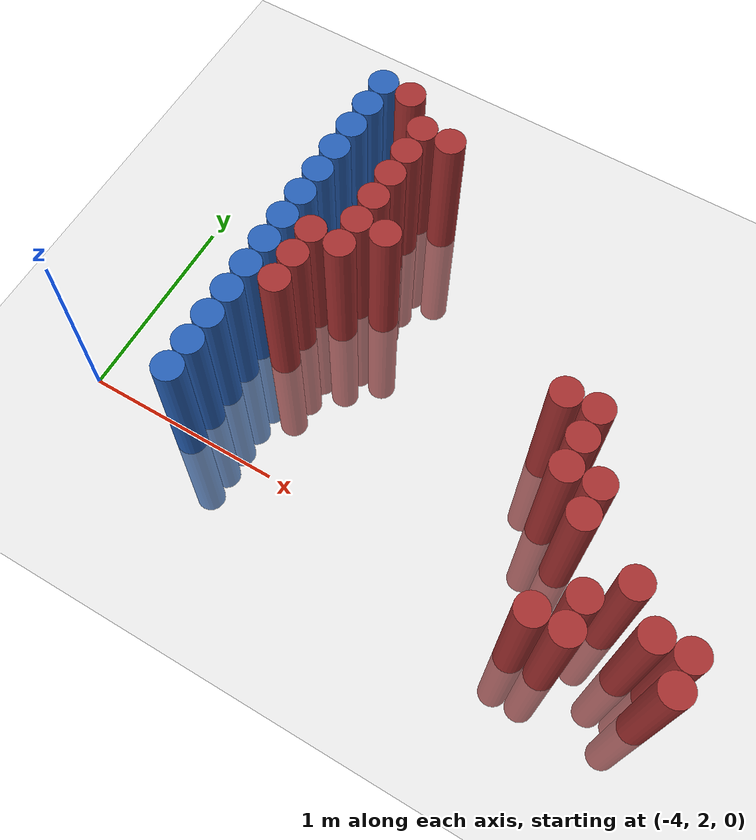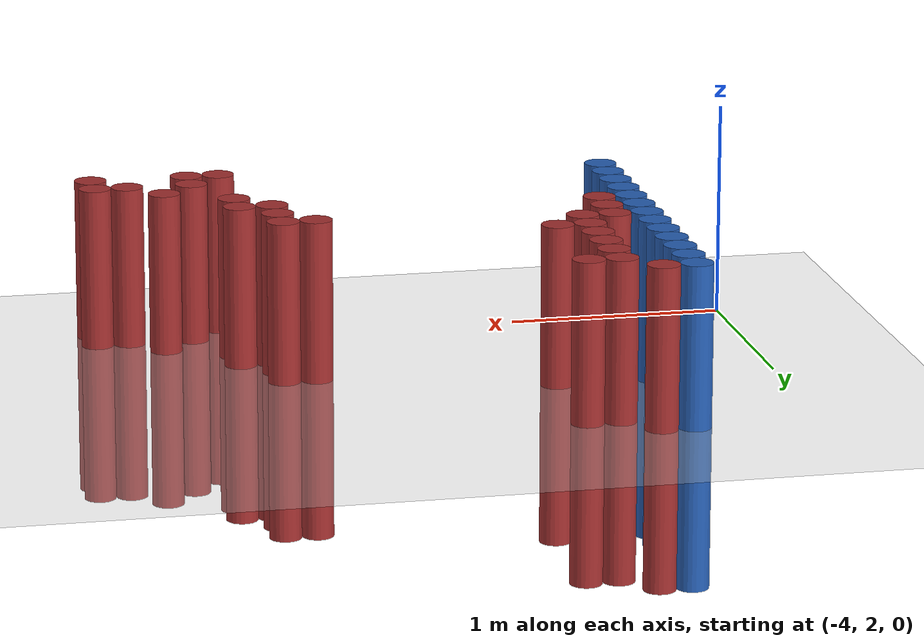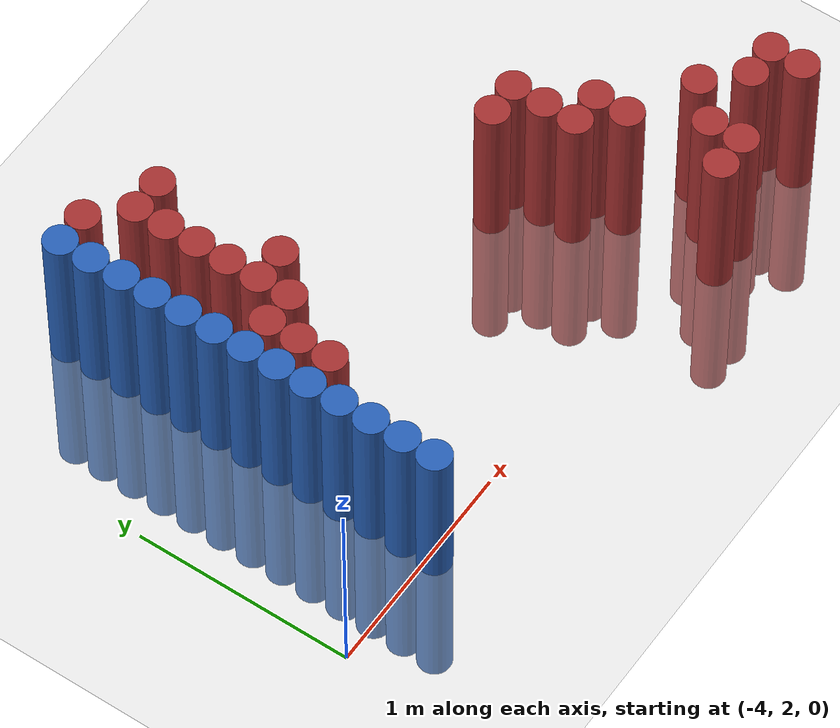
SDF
<sdf version="1.6">
 <world name="default">
  <model name="ground_plane">
   <static>1</static>
   <link name="link">
    <collision name="collision">
     <geometry><plane><normal>0 0 1</normal><size>100 100</size></plane></geometry>
     <surface><friction><ode><mu>100</mu><mu2>50</mu2></ode></friction></surface>
    </collision>
    <visual name="visual">
     <cast_shadows>0</cast_shadows>
     <geometry><plane><normal>0 0 1</normal><size>100 100</size></plane></geometry>
     <material>
      <script><uri>file://media/materials/scripts/gazebo.material</uri><name>Gazebo/Grey</name></script>
     </material>
    </visual>
   </link>
  </model>
  <model name="unit_cylinder_141">
   <static>1</static>
   <pose>-3.425000 1.975000 0.000000 0.000000 0.000000 0.000000</pose>
   <link name="link">
    <inertial>
     <mass>1</mass>
     <inertia><ixx>0.145833</ixx><ixy>0</ixy><ixz>0</ixz><iyy>0.145833</iyy><iyz>0</iyz><izz>0.125</izz></inertia>
    </inertial>
    <collision name="collision">
     <geometry><cylinder><radius>0.075000</radius><length>1.5</length></cylinder></geometry>
    </collision>
    <visual name="visual">
     <geometry><cylinder><radius>0.075000</radius><length>1.5</length></cylinder></geometry>
     <material>
      <ambient>0.152000 0.379000 0.720000 1</ambient>
      <diffuse>0.152000 0.379000 0.720000 1</diffuse>
     </material>
     <material>
      <script><name>Gazebo/Grey</name><uri>file://media/materials/scripts/gazebo.material</uri></script>
     </material>
    </visual>
   </link>
  </model>
  <model name="unit_cylinder_143">
   <static>1</static>
   <pose>-3.425000 2.125000 0.000000 0.000000 0.000000 0.000000</pose>
   <link name="link">
    <inertial>
     <mass>1</mass>
     <inertia><ixx>0.145833</ixx><ixy>0</ixy><ixz>0</ixz><iyy>0.145833</iyy><iyz>0</iyz><izz>0.125</izz></inertia>
    </inertial>
    <collision name="collision">
     <geometry><cylinder><radius>0.075000</radius><length>1.5</length></cylinder></geometry>
    </collision>
    <visual name="visual">
     <geometry><cylinder><radius>0.075000</radius><length>1.5</length></cylinder></geometry>
     <material>
      <ambient>0.152000 0.379000 0.720000 1</ambient>
      <diffuse>0.152000 0.379000 0.720000 1</diffuse>
     </material>
     <material>
      <script><name>Gazebo/Grey</name><uri>file://media/materials/scripts/gazebo.material</uri></script>
     </material>
    </visual>
   </link>
  </model>
  <model name="unit_cylinder_145">
   <static>1</static>
   <pose>-3.425000 2.275000 0.000000 0.000000 0.000000 0.000000</pose>
   <link name="link">
    <inertial>
     <mass>1</mass>
     <inertia><ixx>0.145833</ixx><ixy>0</ixy><ixz>0</ixz><iyy>0.145833</iyy><iyz>0</iyz><izz>0.125</izz></inertia>
    </inertial>
    <collision name="collision">
     <geometry><cylinder><radius>0.075000</radius><length>1.5</length></cylinder></geometry>
    </collision>
    <visual name="visual">
     <geometry><cylinder><radius>0.075000</radius><length>1.5</length></cylinder></geometry>
     <material>
      <ambient>0.152000 0.379000 0.720000 1</ambient>
      <diffuse>0.152000 0.379000 0.720000 1</diffuse>
     </material>
     <material>
      <script><name>Gazebo/Grey</name><uri>file://media/materials/scripts/gazebo.material</uri></script>
     </material>
    </visual>
   </link>
  </model>
  <model name="unit_cylinder_147">
   <static>1</static>
   <pose>-3.425000 2.425000 0.000000 0.000000 0.000000 0.000000</pose>
   <link name="link">
    <inertial>
     <mass>1</mass>
     <inertia><ixx>0.145833</ixx><ixy>0</ixy><ixz>0</ixz><iyy>0.145833</iyy><iyz>0</iyz><izz>0.125</izz></inertia>
    </inertial>
    <collision name="collision">
     <geometry><cylinder><radius>0.075000</radius><length>1.5</length></cylinder></geometry>
    </collision>
    <visual name="visual">
     <geometry><cylinder><radius>0.075000</radius><length>1.5</length></cylinder></geometry>
     <material>
      <ambient>0.152000 0.379000 0.720000 1</ambient>
      <diffuse>0.152000 0.379000 0.720000 1</diffuse>
     </material>
     <material>
      <script><name>Gazebo/Grey</name><uri>file://media/materials/scripts/gazebo.material</uri></script>
     </material>
    </visual>
   </link>
  </model>
  <model name="unit_cylinder_149">
   <static>1</static>
   <pose>-3.425000 2.575000 0.000000 0.000000 0.000000 0.000000</pose>
   <link name="link">
    <inertial>
     <mass>1</mass>
     <inertia><ixx>0.145833</ixx><ixy>0</ixy><ixz>0</ixz><iyy>0.145833</iyy><iyz>0</iyz><izz>0.125</izz></inertia>
    </inertial>
    <collision name="collision">
     <geometry><cylinder><radius>0.075000</radius><length>1.5</length></cylinder></geometry>
    </collision>
    <visual name="visual">
     <geometry><cylinder><radius>0.075000</radius><length>1.5</length></cylinder></geometry>
     <material>
      <ambient>0.152000 0.379000 0.720000 1</ambient>
      <diffuse>0.152000 0.379000 0.720000 1</diffuse>
     </material>
     <material>
      <script><name>Gazebo/Grey</name><uri>file://media/materials/scripts/gazebo.material</uri></script>
     </material>
    </visual>
   </link>
  </model>
  <model name="unit_cylinder_151">
   <static>1</static>
   <pose>-3.425000 2.725000 0.000000 0.000000 0.000000 0.000000</pose>
   <link name="link">
    <inertial>
     <mass>1</mass>
     <inertia><ixx>0.145833</ixx><ixy>0</ixy><ixz>0</ixz><iyy>0.145833</iyy><iyz>0</iyz><izz>0.125</izz></inertia>
    </inertial>
    <collision name="collision">
     <geometry><cylinder><radius>0.075000</radius><length>1.5</length></cylinder></geometry>
    </collision>
    <visual name="visual">
     <geometry><cylinder><radius>0.075000</radius><length>1.5</length></cylinder></geometry>
     <material>
      <ambient>0.152000 0.379000 0.720000 1</ambient>
      <diffuse>0.152000 0.379000 0.720000 1</diffuse>
     </material>
     <material>
      <script><name>Gazebo/Grey</name><uri>file://media/materials/scripts/gazebo.material</uri></script>
     </material>
    </visual>
   </link>
  </model>
  <model name="unit_cylinder_153">
   <static>1</static>
   <pose>-3.425000 2.875000 0.000000 0.000000 0.000000 0.000000</pose>
   <link name="link">
    <inertial>
     <mass>1</mass>
     <inertia><ixx>0.145833</ixx><ixy>0</ixy><ixz>0</ixz><iyy>0.145833</iyy><iyz>0</iyz><izz>0.125</izz></inertia>
    </inertial>
    <collision name="collision">
     <geometry><cylinder><radius>0.075000</radius><length>1.5</length></cylinder></geometry>
    </collision>
    <visual name="visual">
     <geometry><cylinder><radius>0.075000</radius><length>1.5</length></cylinder></geometry>
     <material>
      <ambient>0.152000 0.379000 0.720000 1</ambient>
      <diffuse>0.152000 0.379000 0.720000 1</diffuse>
     </material>
     <material>
      <script><name>Gazebo/Grey</name><uri>file://media/materials/scripts/gazebo.material</uri></script>
     </material>
    </visual>
   </link>
  </model>
  <model name="unit_cylinder_155">
   <static>1</static>
   <pose>-3.425000 3.025000 0.000000 0.000000 0.000000 0.000000</pose>
   <link name="link">
    <inertial>
     <mass>1</mass>
     <inertia><ixx>0.145833</ixx><ixy>0</ixy><ixz>0</ixz><iyy>0.145833</iyy><iyz>0</iyz><izz>0.125</izz></inertia>
    </inertial>
    <collision name="collision">
     <geometry><cylinder><radius>0.075000</radius><length>1.5</length></cylinder></geometry>
    </collision>
    <visual name="visual">
     <geometry><cylinder><radius>0.075000</radius><length>1.5</length></cylinder></geometry>
     <material>
      <ambient>0.152000 0.379000 0.720000 1</ambient>
      <diffuse>0.152000 0.379000 0.720000 1</diffuse>
     </material>
     <material>
      <script><name>Gazebo/Grey</name><uri>file://media/materials/scripts/gazebo.material</uri></script>
     </material>
    </visual>
   </link>
  </model>
  <model name="unit_cylinder_157">
   <static>1</static>
   <pose>-3.425000 3.175000 0.000000 0.000000 0.000000 0.000000</pose>
   <link name="link">
    <inertial>
     <mass>1</mass>
     <inertia><ixx>0.145833</ixx><ixy>0</ixy><ixz>0</ixz><iyy>0.145833</iyy><iyz>0</iyz><izz>0.125</izz></inertia>
    </inertial>
    <collision name="collision">
     <geometry><cylinder><radius>0.075000</radius><length>1.5</length></cylinder></geometry>
    </collision>
    <visual name="visual">
     <geometry><cylinder><radius>0.075000</radius><length>1.5</length></cylinder></geometry>
     <material>
      <ambient>0.152000 0.379000 0.720000 1</ambient>
      <diffuse>0.152000 0.379000 0.720000 1</diffuse>
     </material>
     <material>
      <script><name>Gazebo/Grey</name><uri>file://media/materials/scripts/gazebo.material</uri></script>
     </material>
    </visual>
   </link>
  </model>
  <model name="unit_cylinder_159">
   <static>1</static>
   <pose>-3.425000 3.325000 0.000000 0.000000 0.000000 0.000000</pose>
   <link name="link">
    <inertial>
     <mass>1</mass>
     <inertia><ixx>0.145833</ixx><ixy>0</ixy><ixz>0</ixz><iyy>0.145833</iyy><iyz>0</iyz><izz>0.125</izz></inertia>
    </inertial>
    <collision name="collision">
     <geometry><cylinder><radius>0.075000</radius><length>1.5</length></cylinder></geometry>
    </collision>
    <visual name="visual">
     <geometry><cylinder><radius>0.075000</radius><length>1.5</length></cylinder></geometry>
     <material>
      <ambient>0.152000 0.379000 0.720000 1</ambient>
      <diffuse>0.152000 0.379000 0.720000 1</diffuse>
     </material>
     <material>
      <script><name>Gazebo/Grey</name><uri>file://media/materials/scripts/gazebo.material</uri></script>
     </material>
    </visual>
   </link>
  </model>
  <model name="unit_cylinder_161">
   <static>1</static>
   <pose>-3.425000 3.475000 0.000000 0.000000 0.000000 0.000000</pose>
   <link name="link">
    <inertial>
     <mass>1</mass>
     <inertia><ixx>0.145833</ixx><ixy>0</ixy><ixz>0</ixz><iyy>0.145833</iyy><iyz>0</iyz><izz>0.125</izz></inertia>
    </inertial>
    <collision name="collision">
     <geometry><cylinder><radius>0.075000</radius><length>1.5</length></cylinder></geometry>
    </collision>
    <visual name="visual">
     <geometry><cylinder><radius>0.075000</radius><length>1.5</length></cylinder></geometry>
     <material>
      <ambient>0.152000 0.379000 0.720000 1</ambient>
      <diffuse>0.152000 0.379000 0.720000 1</diffuse>
     </material>
     <material>
      <script><name>Gazebo/Grey</name><uri>file://media/materials/scripts/gazebo.material</uri></script>
     </material>
    </visual>
   </link>
  </model>
  <model name="unit_cylinder_163">
   <static>1</static>
   <pose>-3.425000 3.625000 0.000000 0.000000 0.000000 0.000000</pose>
   <link name="link">
    <inertial>
     <mass>1</mass>
     <inertia><ixx>0.145833</ixx><ixy>0</ixy><ixz>0</ixz><iyy>0.145833</iyy><iyz>0</iyz><izz>0.125</izz></inertia>
    </inertial>
    <collision name="collision">
     <geometry><cylinder><radius>0.075000</radius><length>1.5</length></cylinder></geometry>
    </collision>
    <visual name="visual">
     <geometry><cylinder><radius>0.075000</radius><length>1.5</length></cylinder></geometry>
     <material>
      <ambient>0.152000 0.379000 0.720000 1</ambient>
      <diffuse>0.152000 0.379000 0.720000 1</diffuse>
     </material>
     <material>
      <script><name>Gazebo/Grey</name><uri>file://media/materials/scripts/gazebo.material</uri></script>
     </material>
    </visual>
   </link>
  </model>
  <model name="unit_cylinder_165">
   <static>1</static>
   <pose>-3.425000 3.775000 0.000000 0.000000 0.000000 0.000000</pose>
   <link name="link">
    <inertial>
     <mass>1</mass>
     <inertia><ixx>0.145833</ixx><ixy>0</ixy><ixz>0</ixz><iyy>0.145833</iyy><iyz>0</iyz><izz>0.125</izz></inertia>
    </inertial>
    <collision name="collision">
     <geometry><cylinder><radius>0.075000</radius><length>1.5</length></cylinder></geometry>
    </collision>
    <visual name="visual">
     <geometry><cylinder><radius>0.075000</radius><length>1.5</length></cylinder></geometry>
     <material>
      <ambient>0.152000 0.379000 0.720000 1</ambient>
      <diffuse>0.152000 0.379000 0.720000 1</diffuse>
     </material>
     <material>
      <script><name>Gazebo/Grey</name><uri>file://media/materials/scripts/gazebo.material</uri></script>
     </material>
    </visual>
   </link>
  </model>
  <model name="unit_cylinder_234">
   <static>1</static>
   <pose>-3.425000 1.975000 0.000000 0.000000 0.000000 0.000000</pose>
   <link name="link">
    <inertial>
     <mass>1</mass>
     <inertia><ixx>0.145833</ixx><ixy>0</ixy><ixz>0</ixz><iyy>0.145833</iyy><iyz>0</iyz><izz>0.125</izz></inertia>
    </inertial>
    <collision name="collision">
     <geometry><cylinder><radius>0.075000</radius><length>1.5</length></cylinder></geometry>
    </collision>
    <visual name="visual">
     <geometry><cylinder><radius>0.075000</radius><length>1.5</length></cylinder></geometry>
     <material>
      <ambient>0.152000 0.379000 0.720000 1</ambient>
      <diffuse>0.152000 0.379000 0.720000 1</diffuse>
     </material>
     <material>
      <script><name>Gazebo/Grey</name><uri>file://media/materials/scripts/gazebo.material</uri></script>
     </material>
    </visual>
   </link>
  </model>
  <model name="unit_cylinder_235">
   <static>1</static>
   <pose>-3.425000 2.125000 0.000000 0.000000 0.000000 0.000000</pose>
   <link name="link">
    <inertial>
     <mass>1</mass>
     <inertia><ixx>0.145833</ixx><ixy>0</ixy><ixz>0</ixz><iyy>0.145833</iyy><iyz>0</iyz><izz>0.125</izz></inertia>
    </inertial>
    <collision name="collision">
     <geometry><cylinder><radius>0.075000</radius><length>1.5</length></cylinder></geometry>
    </collision>
    <visual name="visual">
     <geometry><cylinder><radius>0.075000</radius><length>1.5</length></cylinder></geometry>
     <material>
      <ambient>0.152000 0.379000 0.720000 1</ambient>
      <diffuse>0.152000 0.379000 0.720000 1</diffuse>
     </material>
     <material>
      <script><name>Gazebo/Grey</name><uri>file://media/materials/scripts/gazebo.material</uri></script>
     </material>
    </visual>
   </link>
  </model>
  <model name="unit_cylinder_236">
   <static>1</static>
   <pose>-3.425000 2.275000 0.000000 0.000000 0.000000 0.000000</pose>
   <link name="link">
    <inertial>
     <mass>1</mass>
     <inertia><ixx>0.145833</ixx><ixy>0</ixy><ixz>0</ixz><iyy>0.145833</iyy><iyz>0</iyz><izz>0.125</izz></inertia>
    </inertial>
    <collision name="collision">
     <geometry><cylinder><radius>0.075000</radius><length>1.5</length></cylinder></geometry>
    </collision>
    <visual name="visual">
     <geometry><cylinder><radius>0.075000</radius><length>1.5</length></cylinder></geometry>
     <material>
      <ambient>0.152000 0.379000 0.720000 1</ambient>
      <diffuse>0.152000 0.379000 0.720000 1</diffuse>
     </material>
     <material>
      <script><name>Gazebo/Grey</name><uri>file://media/materials/scripts/gazebo.material</uri></script>
     </material>
    </visual>
   </link>
  </model>
  <model name="unit_cylinder_237">
   <static>1</static>
   <pose>-3.425000 2.425000 0.000000 0.000000 0.000000 0.000000</pose>
   <link name="link">
    <inertial>
     <mass>1</mass>
     <inertia><ixx>0.145833</ixx><ixy>0</ixy><ixz>0</ixz><iyy>0.145833</iyy><iyz>0</iyz><izz>0.125</izz></inertia>
    </inertial>
    <collision name="collision">
     <geometry><cylinder><radius>0.075000</radius><length>1.5</length></cylinder></geometry>
    </collision>
    <visual name="visual">
     <geometry><cylinder><radius>0.075000</radius><length>1.5</length></cylinder></geometry>
     <material>
      <ambient>0.152000 0.379000 0.720000 1</ambient>
      <diffuse>0.152000 0.379000 0.720000 1</diffuse>
     </material>
     <material>
      <script><name>Gazebo/Grey</name><uri>file://media/materials/scripts/gazebo.material</uri></script>
     </material>
    </visual>
   </link>
  </model>
  <model name="unit_cylinder_238">
   <static>1</static>
   <pose>-3.425000 2.575000 0.000000 0.000000 0.000000 0.000000</pose>
   <link name="link">
    <inertial>
     <mass>1</mass>
     <inertia><ixx>0.145833</ixx><ixy>0</ixy><ixz>0</ixz><iyy>0.145833</iyy><iyz>0</iyz><izz>0.125</izz></inertia>
    </inertial>
    <collision name="collision">
     <geometry><cylinder><radius>0.075000</radius><length>1.5</length></cylinder></geometry>
    </collision>
    <visual name="visual">
     <geometry><cylinder><radius>0.075000</radius><length>1.5</length></cylinder></geometry>
     <material>
      <ambient>0.152000 0.379000 0.720000 1</ambient>
      <diffuse>0.152000 0.379000 0.720000 1</diffuse>
     </material>
     <material>
      <script><name>Gazebo/Grey</name><uri>file://media/materials/scripts/gazebo.material</uri></script>
     </material>
    </visual>
   </link>
  </model>
  <model name="unit_cylinder_239">
   <static>1</static>
   <pose>-3.425000 2.725000 0.000000 0.000000 0.000000 0.000000</pose>
   <link name="link">
    <inertial>
     <mass>1</mass>
     <inertia><ixx>0.145833</ixx><ixy>0</ixy><ixz>0</ixz><iyy>0.145833</iyy><iyz>0</iyz><izz>0.125</izz></inertia>
    </inertial>
    <collision name="collision">
     <geometry><cylinder><radius>0.075000</radius><length>1.5</length></cylinder></geometry>
    </collision>
    <visual name="visual">
     <geometry><cylinder><radius>0.075000</radius><length>1.5</length></cylinder></geometry>
     <material>
      <ambient>0.152000 0.379000 0.720000 1</ambient>
      <diffuse>0.152000 0.379000 0.720000 1</diffuse>
     </material>
     <material>
      <script><name>Gazebo/Grey</name><uri>file://media/materials/scripts/gazebo.material</uri></script>
     </material>
    </visual>
   </link>
  </model>
  <model name="unit_cylinder_240">
   <static>1</static>
   <pose>-3.425000 2.875000 0.000000 0.000000 0.000000 0.000000</pose>
   <link name="link">
    <inertial>
     <mass>1</mass>
     <inertia><ixx>0.145833</ixx><ixy>0</ixy><ixz>0</ixz><iyy>0.145833</iyy><iyz>0</iyz><izz>0.125</izz></inertia>
    </inertial>
    <collision name="collision">
     <geometry><cylinder><radius>0.075000</radius><length>1.5</length></cylinder></geometry>
    </collision>
    <visual name="visual">
     <geometry><cylinder><radius>0.075000</radius><length>1.5</length></cylinder></geometry>
     <material>
      <ambient>0.152000 0.379000 0.720000 1</ambient>
      <diffuse>0.152000 0.379000 0.720000 1</diffuse>
     </material>
     <material>
      <script><name>Gazebo/Grey</name><uri>file://media/materials/scripts/gazebo.material</uri></script>
     </material>
    </visual>
   </link>
  </model>
  <model name="unit_cylinder_241">
   <static>1</static>
   <pose>-3.425000 3.025000 0.000000 0.000000 0.000000 0.000000</pose>
   <link name="link">
    <inertial>
     <mass>1</mass>
     <inertia><ixx>0.145833</ixx><ixy>0</ixy><ixz>0</ixz><iyy>0.145833</iyy><iyz>0</iyz><izz>0.125</izz></inertia>
    </inertial>
    <collision name="collision">
     <geometry><cylinder><radius>0.075000</radius><length>1.5</length></cylinder></geometry>
    </collision>
    <visual name="visual">
     <geometry><cylinder><radius>0.075000</radius><length>1.5</length></cylinder></geometry>
     <material>
      <ambient>0.152000 0.379000 0.720000 1</ambient>
      <diffuse>0.152000 0.379000 0.720000 1</diffuse>
     </material>
     <material>
      <script><name>Gazebo/Grey</name><uri>file://media/materials/scripts/gazebo.material</uri></script>
     </material>
    </visual>
   </link>
  </model>
  <model name="unit_cylinder_242">
   <static>1</static>
   <pose>-3.425000 3.175000 0.000000 0.000000 0.000000 0.000000</pose>
   <link name="link">
    <inertial>
     <mass>1</mass>
     <inertia><ixx>0.145833</ixx><ixy>0</ixy><ixz>0</ixz><iyy>0.145833</iyy><iyz>0</iyz><izz>0.125</izz></inertia>
    </inertial>
    <collision name="collision">
     <geometry><cylinder><radius>0.075000</radius><length>1.5</length></cylinder></geometry>
    </collision>
    <visual name="visual">
     <geometry><cylinder><radius>0.075000</radius><length>1.5</length></cylinder></geometry>
     <material>
      <ambient>0.152000 0.379000 0.720000 1</ambient>
      <diffuse>0.152000 0.379000 0.720000 1</diffuse>
     </material>
     <material>
      <script><name>Gazebo/Grey</name><uri>file://media/materials/scripts/gazebo.material</uri></script>
     </material>
    </visual>
   </link>
  </model>
  <model name="unit_cylinder_243">
   <static>1</static>
   <pose>-3.425000 3.325000 0.000000 0.000000 0.000000 0.000000</pose>
   <link name="link">
    <inertial>
     <mass>1</mass>
     <inertia><ixx>0.145833</ixx><ixy>0</ixy><ixz>0</ixz><iyy>0.145833</iyy><iyz>0</iyz><izz>0.125</izz></inertia>
    </inertial>
    <collision name="collision">
     <geometry><cylinder><radius>0.075000</radius><length>1.5</length></cylinder></geometry>
    </collision>
    <visual name="visual">
     <geometry><cylinder><radius>0.075000</radius><length>1.5</length></cylinder></geometry>
     <material>
      <ambient>0.152000 0.379000 0.720000 1</ambient>
      <diffuse>0.152000 0.379000 0.720000 1</diffuse>
     </material>
     <material>
      <script><name>Gazebo/Grey</name><uri>file://media/materials/scripts/gazebo.material</uri></script>
     </material>
    </visual>
   </link>
  </model>
  <model name="unit_cylinder_244">
   <static>1</static>
   <pose>-3.425000 3.475000 0.000000 0.000000 0.000000 0.000000</pose>
   <link name="link">
    <inertial>
     <mass>1</mass>
     <inertia><ixx>0.145833</ixx><ixy>0</ixy><ixz>0</ixz><iyy>0.145833</iyy><iyz>0</iyz><izz>0.125</izz></inertia>
    </inertial>
    <collision name="collision">
     <geometry><cylinder><radius>0.075000</radius><length>1.5</length></cylinder></geometry>
    </collision>
    <visual name="visual">
     <geometry><cylinder><radius>0.075000</radius><length>1.5</length></cylinder></geometry>
     <material>
      <ambient>0.152000 0.379000 0.720000 1</ambient>
      <diffuse>0.152000 0.379000 0.720000 1</diffuse>
     </material>
     <material>
      <script><name>Gazebo/Grey</name><uri>file://media/materials/scripts/gazebo.material</uri></script>
     </material>
    </visual>
   </link>
  </model>
  <model name="unit_cylinder_245">
   <static>1</static>
   <pose>-3.425000 3.625000 0.000000 0.000000 0.000000 0.000000</pose>
   <link name="link">
    <inertial>
     <mass>1</mass>
     <inertia><ixx>0.145833</ixx><ixy>0</ixy><ixz>0</ixz><iyy>0.145833</iyy><iyz>0</iyz><izz>0.125</izz></inertia>
    </inertial>
    <collision name="collision">
     <geometry><cylinder><radius>0.075000</radius><length>1.5</length></cylinder></geometry>
    </collision>
    <visual name="visual">
     <geometry><cylinder><radius>0.075000</radius><length>1.5</length></cylinder></geometry>
     <material>
      <ambient>0.152000 0.379000 0.720000 1</ambient>
      <diffuse>0.152000 0.379000 0.720000 1</diffuse>
     </material>
     <material>
      <script><name>Gazebo/Grey</name><uri>file://media/materials/scripts/gazebo.material</uri></script>
     </material>
    </visual>
   </link>
  </model>
  <model name="unit_cylinder_246">
   <static>1</static>
   <pose>-3.425000 3.775000 0.000000 0.000000 0.000000 0.000000</pose>
   <link name="link">
    <inertial>
     <mass>1</mass>
     <inertia><ixx>0.145833</ixx><ixy>0</ixy><ixz>0</ixz><iyy>0.145833</iyy><iyz>0</iyz><izz>0.125</izz></inertia>
    </inertial>
    <collision name="collision">
     <geometry><cylinder><radius>0.075000</radius><length>1.5</length></cylinder></geometry>
    </collision>
    <visual name="visual">
     <geometry><cylinder><radius>0.075000</radius><length>1.5</length></cylinder></geometry>
     <material>
      <ambient>0.152000 0.379000 0.720000 1</ambient>
      <diffuse>0.152000 0.379000 0.720000 1</diffuse>
     </material>
     <material>
      <script><name>Gazebo/Grey</name><uri>file://media/materials/scripts/gazebo.material</uri></script>
     </material>
    </visual>
   </link>
  </model>
  <model name="unit_cylinder_270">
   <static>1</static>
   <pose>-3.275000 2.575000 0.000000 0.000000 0.000000 0.000000</pose>
   <link name="link">
    <inertial>
     <mass>1</mass>
     <inertia><ixx>0.145833</ixx><ixy>0</ixy><ixz>0</ixz><iyy>0.145833</iyy><iyz>0</iyz><izz>0.125</izz></inertia>
    </inertial>
    <collision name="collision">
     <geometry><cylinder><radius>0.075000</radius><length>1.5</length></cylinder></geometry>
    </collision>
    <visual name="visual">
     <geometry><cylinder><radius>0.075000</radius><length>1.5</length></cylinder></geometry>
     <material>
      <ambient>0.648000 0.192000 0.192000 1</ambient>
      <diffuse>0.648000 0.192000 0.192000 1</diffuse>
     </material>
     <material>
      <script><name>Gazebo/Grey</name><uri>file://media/materials/scripts/gazebo.material</uri></script>
     </material>
    </visual>
   </link>
  </model>
  <model name="unit_cylinder_271">
   <static>1</static>
   <pose>-3.275000 2.725000 0.000000 0.000000 0.000000 0.000000</pose>
   <link name="link">
    <inertial>
     <mass>1</mass>
     <inertia><ixx>0.145833</ixx><ixy>0</ixy><ixz>0</ixz><iyy>0.145833</iyy><iyz>0</iyz><izz>0.125</izz></inertia>
    </inertial>
    <collision name="collision">
     <geometry><cylinder><radius>0.075000</radius><length>1.5</length></cylinder></geometry>
    </collision>
    <visual name="visual">
     <geometry><cylinder><radius>0.075000</radius><length>1.5</length></cylinder></geometry>
     <material>
      <ambient>0.648000 0.192000 0.192000 1</ambient>
      <diffuse>0.648000 0.192000 0.192000 1</diffuse>
     </material>
     <material>
      <script><name>Gazebo/Grey</name><uri>file://media/materials/scripts/gazebo.material</uri></script>
     </material>
    </visual>
   </link>
  </model>
  <model name="unit_cylinder_272">
   <static>1</static>
   <pose>-3.275000 2.875000 0.000000 0.000000 0.000000 0.000000</pose>
   <link name="link">
    <inertial>
     <mass>1</mass>
     <inertia><ixx>0.145833</ixx><ixy>0</ixy><ixz>0</ixz><iyy>0.145833</iyy><iyz>0</iyz><izz>0.125</izz></inertia>
    </inertial>
    <collision name="collision">
     <geometry><cylinder><radius>0.075000</radius><length>1.5</length></cylinder></geometry>
    </collision>
    <visual name="visual">
     <geometry><cylinder><radius>0.075000</radius><length>1.5</length></cylinder></geometry>
     <material>
      <ambient>0.648000 0.192000 0.192000 1</ambient>
      <diffuse>0.648000 0.192000 0.192000 1</diffuse>
     </material>
     <material>
      <script><name>Gazebo/Grey</name><uri>file://media/materials/scripts/gazebo.material</uri></script>
     </material>
    </visual>
   </link>
  </model>
  <model name="unit_cylinder_273">
   <static>1</static>
   <pose>-3.275000 3.775000 0.000000 0.000000 0.000000 0.000000</pose>
   <link name="link">
    <inertial>
     <mass>1</mass>
     <inertia><ixx>0.145833</ixx><ixy>0</ixy><ixz>0</ixz><iyy>0.145833</iyy><iyz>0</iyz><izz>0.125</izz></inertia>
    </inertial>
    <collision name="collision">
     <geometry><cylinder><radius>0.075000</radius><length>1.5</length></cylinder></geometry>
    </collision>
    <visual name="visual">
     <geometry><cylinder><radius>0.075000</radius><length>1.5</length></cylinder></geometry>
     <material>
      <ambient>0.648000 0.192000 0.192000 1</ambient>
      <diffuse>0.648000 0.192000 0.192000 1</diffuse>
     </material>
     <material>
      <script><name>Gazebo/Grey</name><uri>file://media/materials/scripts/gazebo.material</uri></script>
     </material>
    </visual>
   </link>
  </model>
  <model name="unit_cylinder_284">
   <static>1</static>
   <pose>-3.125000 2.875000 0.000000 0.000000 0.000000 0.000000</pose>
   <link name="link">
    <inertial>
     <mass>1</mass>
     <inertia><ixx>0.145833</ixx><ixy>0</ixy><ixz>0</ixz><iyy>0.145833</iyy><iyz>0</iyz><izz>0.125</izz></inertia>
    </inertial>
    <collision name="collision">
     <geometry><cylinder><radius>0.075000</radius><length>1.5</length></cylinder></geometry>
    </collision>
    <visual name="visual">
     <geometry><cylinder><radius>0.075000</radius><length>1.5</length></cylinder></geometry>
     <material>
      <ambient>0.648000 0.192000 0.192000 1</ambient>
      <diffuse>0.648000 0.192000 0.192000 1</diffuse>
     </material>
     <material>
      <script><name>Gazebo/Grey</name><uri>file://media/materials/scripts/gazebo.material</uri></script>
     </material>
    </visual>
   </link>
  </model>
  <model name="unit_cylinder_285">
   <static>1</static>
   <pose>-3.125000 3.025000 0.000000 0.000000 0.000000 0.000000</pose>
   <link name="link">
    <inertial>
     <mass>1</mass>
     <inertia><ixx>0.145833</ixx><ixy>0</ixy><ixz>0</ixz><iyy>0.145833</iyy><iyz>0</iyz><izz>0.125</izz></inertia>
    </inertial>
    <collision name="collision">
     <geometry><cylinder><radius>0.075000</radius><length>1.5</length></cylinder></geometry>
    </collision>
    <visual name="visual">
     <geometry><cylinder><radius>0.075000</radius><length>1.5</length></cylinder></geometry>
     <material>
      <ambient>0.648000 0.192000 0.192000 1</ambient>
      <diffuse>0.648000 0.192000 0.192000 1</diffuse>
     </material>
     <material>
      <script><name>Gazebo/Grey</name><uri>file://media/materials/scripts/gazebo.material</uri></script>
     </material>
    </visual>
   </link>
  </model>
  <model name="unit_cylinder_286">
   <static>1</static>
   <pose>-3.125000 3.175000 0.000000 0.000000 0.000000 0.000000</pose>
   <link name="link">
    <inertial>
     <mass>1</mass>
     <inertia><ixx>0.145833</ixx><ixy>0</ixy><ixz>0</ixz><iyy>0.145833</iyy><iyz>0</iyz><izz>0.125</izz></inertia>
    </inertial>
    <collision name="collision">
     <geometry><cylinder><radius>0.075000</radius><length>1.5</length></cylinder></geometry>
    </collision>
    <visual name="visual">
     <geometry><cylinder><radius>0.075000</radius><length>1.5</length></cylinder></geometry>
     <material>
      <ambient>0.648000 0.192000 0.192000 1</ambient>
      <diffuse>0.648000 0.192000 0.192000 1</diffuse>
     </material>
     <material>
      <script><name>Gazebo/Grey</name><uri>file://media/materials/scripts/gazebo.material</uri></script>
     </material>
    </visual>
   </link>
  </model>
  <model name="unit_cylinder_287">
   <static>1</static>
   <pose>-3.125000 3.325000 0.000000 0.000000 0.000000 0.000000</pose>
   <link name="link">
    <inertial>
     <mass>1</mass>
     <inertia><ixx>0.145833</ixx><ixy>0</ixy><ixz>0</ixz><iyy>0.145833</iyy><iyz>0</iyz><izz>0.125</izz></inertia>
    </inertial>
    <collision name="collision">
     <geometry><cylinder><radius>0.075000</radius><length>1.5</length></cylinder></geometry>
    </collision>
    <visual name="visual">
     <geometry><cylinder><radius>0.075000</radius><length>1.5</length></cylinder></geometry>
     <material>
      <ambient>0.648000 0.192000 0.192000 1</ambient>
      <diffuse>0.648000 0.192000 0.192000 1</diffuse>
     </material>
     <material>
      <script><name>Gazebo/Grey</name><uri>file://media/materials/scripts/gazebo.material</uri></script>
     </material>
    </visual>
   </link>
  </model>
  <model name="unit_cylinder_288">
   <static>1</static>
   <pose>-3.125000 3.475000 0.000000 0.000000 0.000000 0.000000</pose>
   <link name="link">
    <inertial>
     <mass>1</mass>
     <inertia><ixx>0.145833</ixx><ixy>0</ixy><ixz>0</ixz><iyy>0.145833</iyy><iyz>0</iyz><izz>0.125</izz></inertia>
    </inertial>
    <collision name="collision">
     <geometry><cylinder><radius>0.075000</radius><length>1.5</length></cylinder></geometry>
    </collision>
    <visual name="visual">
     <geometry><cylinder><radius>0.075000</radius><length>1.5</length></cylinder></geometry>
     <material>
      <ambient>0.648000 0.192000 0.192000 1</ambient>
      <diffuse>0.648000 0.192000 0.192000 1</diffuse>
     </material>
     <material>
      <script><name>Gazebo/Grey</name><uri>file://media/materials/scripts/gazebo.material</uri></script>
     </material>
    </visual>
   </link>
  </model>
  <model name="unit_cylinder_289">
   <static>1</static>
   <pose>-3.125000 3.625000 0.000000 0.000000 0.000000 0.000000</pose>
   <link name="link">
    <inertial>
     <mass>1</mass>
     <inertia><ixx>0.145833</ixx><ixy>0</ixy><ixz>0</ixz><iyy>0.145833</iyy><iyz>0</iyz><izz>0.125</izz></inertia>
    </inertial>
    <collision name="collision">
     <geometry><cylinder><radius>0.075000</radius><length>1.5</length></cylinder></geometry>
    </collision>
    <visual name="visual">
     <geometry><cylinder><radius>0.075000</radius><length>1.5</length></cylinder></geometry>
     <material>
      <ambient>0.648000 0.192000 0.192000 1</ambient>
      <diffuse>0.648000 0.192000 0.192000 1</diffuse>
     </material>
     <material>
      <script><name>Gazebo/Grey</name><uri>file://media/materials/scripts/gazebo.material</uri></script>
     </material>
    </visual>
   </link>
  </model>
  <model name="unit_cylinder_297">
   <static>1</static>
   <pose>-2.975000 3.025000 0.000000 0.000000 0.000000 0.000000</pose>
   <link name="link">
    <inertial>
     <mass>1</mass>
     <inertia><ixx>0.145833</ixx><ixy>0</ixy><ixz>0</ixz><iyy>0.145833</iyy><iyz>0</iyz><izz>0.125</izz></inertia>
    </inertial>
    <collision name="collision">
     <geometry><cylinder><radius>0.075000</radius><length>1.5</length></cylinder></geometry>
    </collision>
    <visual name="visual">
     <geometry><cylinder><radius>0.075000</radius><length>1.5</length></cylinder></geometry>
     <material>
      <ambient>0.648000 0.192000 0.192000 1</ambient>
      <diffuse>0.648000 0.192000 0.192000 1</diffuse>
     </material>
     <material>
      <script><name>Gazebo/Grey</name><uri>file://media/materials/scripts/gazebo.material</uri></script>
     </material>
    </visual>
   </link>
  </model>
  <model name="unit_cylinder_298">
   <static>1</static>
   <pose>-2.975000 3.625000 0.000000 0.000000 0.000000 0.000000</pose>
   <link name="link">
    <inertial>
     <mass>1</mass>
     <inertia><ixx>0.145833</ixx><ixy>0</ixy><ixz>0</ixz><iyy>0.145833</iyy><iyz>0</iyz><izz>0.125</izz></inertia>
    </inertial>
    <collision name="collision">
     <geometry><cylinder><radius>0.075000</radius><length>1.5</length></cylinder></geometry>
    </collision>
    <visual name="visual">
     <geometry><cylinder><radius>0.075000</radius><length>1.5</length></cylinder></geometry>
     <material>
      <ambient>0.648000 0.192000 0.192000 1</ambient>
      <diffuse>0.648000 0.192000 0.192000 1</diffuse>
     </material>
     <material>
      <script><name>Gazebo/Grey</name><uri>file://media/materials/scripts/gazebo.material</uri></script>
     </material>
    </visual>
   </link>
  </model>
  <model name="unit_cylinder_327">
   <static>1</static>
   <pose>-1.925000 2.725000 0.000000 0.000000 0.000000 0.000000</pose>
   <link name="link">
    <inertial>
     <mass>1</mass>
     <inertia><ixx>0.145833</ixx><ixy>0</ixy><ixz>0</ixz><iyy>0.145833</iyy><iyz>0</iyz><izz>0.125</izz></inertia>
    </inertial>
    <collision name="collision">
     <geometry><cylinder><radius>0.075000</radius><length>1.5</length></cylinder></geometry>
    </collision>
    <visual name="visual">
     <geometry><cylinder><radius>0.075000</radius><length>1.5</length></cylinder></geometry>
     <material>
      <ambient>0.648000 0.192000 0.192000 1</ambient>
      <diffuse>0.648000 0.192000 0.192000 1</diffuse>
     </material>
     <material>
      <script><name>Gazebo/Grey</name><uri>file://media/materials/scripts/gazebo.material</uri></script>
     </material>
    </visual>
   </link>
  </model>
  <model name="unit_cylinder_337">
   <static>1</static>
   <pose>-1.775000 2.425000 0.000000 0.000000 0.000000 0.000000</pose>
   <link name="link">
    <inertial>
     <mass>1</mass>
     <inertia><ixx>0.145833</ixx><ixy>0</ixy><ixz>0</ixz><iyy>0.145833</iyy><iyz>0</iyz><izz>0.125</izz></inertia>
    </inertial>
    <collision name="collision">
     <geometry><cylinder><radius>0.075000</radius><length>1.5</length></cylinder></geometry>
    </collision>
    <visual name="visual">
     <geometry><cylinder><radius>0.075000</radius><length>1.5</length></cylinder></geometry>
     <material>
      <ambient>0.648000 0.192000 0.192000 1</ambient>
      <diffuse>0.648000 0.192000 0.192000 1</diffuse>
     </material>
     <material>
      <script><name>Gazebo/Grey</name><uri>file://media/materials/scripts/gazebo.material</uri></script>
     </material>
    </visual>
   </link>
  </model>
  <model name="unit_cylinder_338">
   <static>1</static>
   <pose>-1.775000 2.575000 0.000000 0.000000 0.000000 0.000000</pose>
   <link name="link">
    <inertial>
     <mass>1</mass>
     <inertia><ixx>0.145833</ixx><ixy>0</ixy><ixz>0</ixz><iyy>0.145833</iyy><iyz>0</iyz><izz>0.125</izz></inertia>
    </inertial>
    <collision name="collision">
     <geometry><cylinder><radius>0.075000</radius><length>1.5</length></cylinder></geometry>
    </collision>
    <visual name="visual">
     <geometry><cylinder><radius>0.075000</radius><length>1.5</length></cylinder></geometry>
     <material>
      <ambient>0.648000 0.192000 0.192000 1</ambient>
      <diffuse>0.648000 0.192000 0.192000 1</diffuse>
     </material>
     <material>
      <script><name>Gazebo/Grey</name><uri>file://media/materials/scripts/gazebo.material</uri></script>
     </material>
    </visual>
   </link>
  </model>
  <model name="unit_cylinder_339">
   <static>1</static>
   <pose>-1.775000 2.725000 0.000000 0.000000 0.000000 0.000000</pose>
   <link name="link">
    <inertial>
     <mass>1</mass>
     <inertia><ixx>0.145833</ixx><ixy>0</ixy><ixz>0</ixz><iyy>0.145833</iyy><iyz>0</iyz><izz>0.125</izz></inertia>
    </inertial>
    <collision name="collision">
     <geometry><cylinder><radius>0.075000</radius><length>1.5</length></cylinder></geometry>
    </collision>
    <visual name="visual">
     <geometry><cylinder><radius>0.075000</radius><length>1.5</length></cylinder></geometry>
     <material>
      <ambient>0.648000 0.192000 0.192000 1</ambient>
      <diffuse>0.648000 0.192000 0.192000 1</diffuse>
     </material>
     <material>
      <script><name>Gazebo/Grey</name><uri>file://media/materials/scripts/gazebo.material</uri></script>
     </material>
    </visual>
   </link>
  </model>
  <model name="unit_cylinder_350">
   <static>1</static>
   <pose>-1.625000 1.825000 0.000000 0.000000 0.000000 0.000000</pose>
   <link name="link">
    <inertial>
     <mass>1</mass>
     <inertia><ixx>0.145833</ixx><ixy>0</ixy><ixz>0</ixz><iyy>0.145833</iyy><iyz>0</iyz><izz>0.125</izz></inertia>
    </inertial>
    <collision name="collision">
     <geometry><cylinder><radius>0.075000</radius><length>1.5</length></cylinder></geometry>
    </collision>
    <visual name="visual">
     <geometry><cylinder><radius>0.075000</radius><length>1.5</length></cylinder></geometry>
     <material>
      <ambient>0.648000 0.192000 0.192000 1</ambient>
      <diffuse>0.648000 0.192000 0.192000 1</diffuse>
     </material>
     <material>
      <script><name>Gazebo/Grey</name><uri>file://media/materials/scripts/gazebo.material</uri></script>
     </material>
    </visual>
   </link>
  </model>
  <model name="unit_cylinder_351">
   <static>1</static>
   <pose>-1.625000 2.275000 0.000000 0.000000 0.000000 0.000000</pose>
   <link name="link">
    <inertial>
     <mass>1</mass>
     <inertia><ixx>0.145833</ixx><ixy>0</ixy><ixz>0</ixz><iyy>0.145833</iyy><iyz>0</iyz><izz>0.125</izz></inertia>
    </inertial>
    <collision name="collision">
     <geometry><cylinder><radius>0.075000</radius><length>1.5</length></cylinder></geometry>
    </collision>
    <visual name="visual">
     <geometry><cylinder><radius>0.075000</radius><length>1.5</length></cylinder></geometry>
     <material>
      <ambient>0.648000 0.192000 0.192000 1</ambient>
      <diffuse>0.648000 0.192000 0.192000 1</diffuse>
     </material>
     <material>
      <script><name>Gazebo/Grey</name><uri>file://media/materials/scripts/gazebo.material</uri></script>
     </material>
    </visual>
   </link>
  </model>
  <model name="unit_cylinder_352">
   <static>1</static>
   <pose>-1.625000 2.425000 0.000000 0.000000 0.000000 0.000000</pose>
   <link name="link">
    <inertial>
     <mass>1</mass>
     <inertia><ixx>0.145833</ixx><ixy>0</ixy><ixz>0</ixz><iyy>0.145833</iyy><iyz>0</iyz><izz>0.125</izz></inertia>
    </inertial>
    <collision name="collision">
     <geometry><cylinder><radius>0.075000</radius><length>1.5</length></cylinder></geometry>
    </collision>
    <visual name="visual">
     <geometry><cylinder><radius>0.075000</radius><length>1.5</length></cylinder></geometry>
     <material>
      <ambient>0.648000 0.192000 0.192000 1</ambient>
      <diffuse>0.648000 0.192000 0.192000 1</diffuse>
     </material>
     <material>
      <script><name>Gazebo/Grey</name><uri>file://media/materials/scripts/gazebo.material</uri></script>
     </material>
    </visual>
   </link>
  </model>
  <model name="unit_cylinder_360">
   <static>1</static>
   <pose>-1.475000 1.825000 0.000000 0.000000 0.000000 0.000000</pose>
   <link name="link">
    <inertial>
     <mass>1</mass>
     <inertia><ixx>0.145833</ixx><ixy>0</ixy><ixz>0</ixz><iyy>0.145833</iyy><iyz>0</iyz><izz>0.125</izz></inertia>
    </inertial>
    <collision name="collision">
     <geometry><cylinder><radius>0.075000</radius><length>1.5</length></cylinder></geometry>
    </collision>
    <visual name="visual">
     <geometry><cylinder><radius>0.075000</radius><length>1.5</length></cylinder></geometry>
     <material>
      <ambient>0.648000 0.192000 0.192000 1</ambient>
      <diffuse>0.648000 0.192000 0.192000 1</diffuse>
     </material>
     <material>
      <script><name>Gazebo/Grey</name><uri>file://media/materials/scripts/gazebo.material</uri></script>
     </material>
    </visual>
   </link>
  </model>
  <model name="unit_cylinder_361">
   <static>1</static>
   <pose>-1.475000 1.975000 0.000000 0.000000 0.000000 0.000000</pose>
   <link name="link">
    <inertial>
     <mass>1</mass>
     <inertia><ixx>0.145833</ixx><ixy>0</ixy><ixz>0</ixz><iyy>0.145833</iyy><iyz>0</iyz><izz>0.125</izz></inertia>
    </inertial>
    <collision name="collision">
     <geometry><cylinder><radius>0.075000</radius><length>1.5</length></cylinder></geometry>
    </collision>
    <visual name="visual">
     <geometry><cylinder><radius>0.075000</radius><length>1.5</length></cylinder></geometry>
     <material>
      <ambient>0.648000 0.192000 0.192000 1</ambient>
      <diffuse>0.648000 0.192000 0.192000 1</diffuse>
     </material>
     <material>
      <script><name>Gazebo/Grey</name><uri>file://media/materials/scripts/gazebo.material</uri></script>
     </material>
    </visual>
   </link>
  </model>
  <model name="unit_cylinder_364">
   <static>1</static>
   <pose>-1.325000 2.125000 0.000000 0.000000 0.000000 0.000000</pose>
   <link name="link">
    <inertial>
     <mass>1</mass>
     <inertia><ixx>0.145833</ixx><ixy>0</ixy><ixz>0</ixz><iyy>0.145833</iyy><iyz>0</iyz><izz>0.125</izz></inertia>
    </inertial>
    <collision name="collision">
     <geometry><cylinder><radius>0.075000</radius><length>1.5</length></cylinder></geometry>
    </collision>
    <visual name="visual">
     <geometry><cylinder><radius>0.075000</radius><length>1.5</length></cylinder></geometry>
     <material>
      <ambient>0.648000 0.192000 0.192000 1</ambient>
      <diffuse>0.648000 0.192000 0.192000 1</diffuse>
     </material>
     <material>
      <script><name>Gazebo/Grey</name><uri>file://media/materials/scripts/gazebo.material</uri></script>
     </material>
    </visual>
   </link>
  </model>
  <model name="unit_cylinder_368">
   <static>1</static>
   <pose>-1.175000 1.975000 0.000000 0.000000 0.000000 0.000000</pose>
   <link name="link">
    <inertial>
     <mass>1</mass>
     <inertia><ixx>0.145833</ixx><ixy>0</ixy><ixz>0</ixz><iyy>0.145833</iyy><iyz>0</iyz><izz>0.125</izz></inertia>
    </inertial>
    <collision name="collision">
     <geometry><cylinder><radius>0.075000</radius><length>1.5</length></cylinder></geometry>
    </collision>
    <visual name="visual">
     <geometry><cylinder><radius>0.075000</radius><length>1.5</length></cylinder></geometry>
     <material>
      <ambient>0.648000 0.192000 0.192000 1</ambient>
      <diffuse>0.648000 0.192000 0.192000 1</diffuse>
     </material>
     <material>
      <script><name>Gazebo/Grey</name><uri>file://media/materials/scripts/gazebo.material</uri></script>
     </material>
    </visual>
   </link>
  </model>
  <model name="unit_cylinder_378">
   <static>1</static>
   <pose>-1.025000 1.825000 0.000000 0.000000 0.000000 0.000000</pose>
   <link name="link">
    <inertial>
     <mass>1</mass>
     <inertia><ixx>0.145833</ixx><ixy>0</ixy><ixz>0</ixz><iyy>0.145833</iyy><iyz>0</iyz><izz>0.125</izz></inertia>
    </inertial>
    <collision name="collision">
     <geometry><cylinder><radius>0.075000</radius><length>1.5</length></cylinder></geometry>
    </collision>
    <visual name="visual">
     <geometry><cylinder><radius>0.075000</radius><length>1.5</length></cylinder></geometry>
     <material>
      <ambient>0.648000 0.192000 0.192000 1</ambient>
      <diffuse>0.648000 0.192000 0.192000 1</diffuse>
     </material>
     <material>
      <script><name>Gazebo/Grey</name><uri>file://media/materials/scripts/gazebo.material</uri></script>
     </material>
    </visual>
   </link>
  </model>
  <model name="unit_cylinder_379">
   <static>1</static>
   <pose>-1.025000 1.975000 0.000000 0.000000 0.000000 0.000000</pose>
   <link name="link">
    <inertial>
     <mass>1</mass>
     <inertia><ixx>0.145833</ixx><ixy>0</ixy><ixz>0</ixz><iyy>0.145833</iyy><iyz>0</iyz><izz>0.125</izz></inertia>
    </inertial>
    <collision name="collision">
     <geometry><cylinder><radius>0.075000</radius><length>1.5</length></cylinder></geometry>
    </collision>
    <visual name="visual">
     <geometry><cylinder><radius>0.075000</radius><length>1.5</length></cylinder></geometry>
     <material>
      <ambient>0.648000 0.192000 0.192000 1</ambient>
      <diffuse>0.648000 0.192000 0.192000 1</diffuse>
     </material>
     <material>
      <script><name>Gazebo/Grey</name><uri>file://media/materials/scripts/gazebo.material</uri></script>
     </material>
    </visual>
   </link>
  </model>
 </world>
</sdf>
